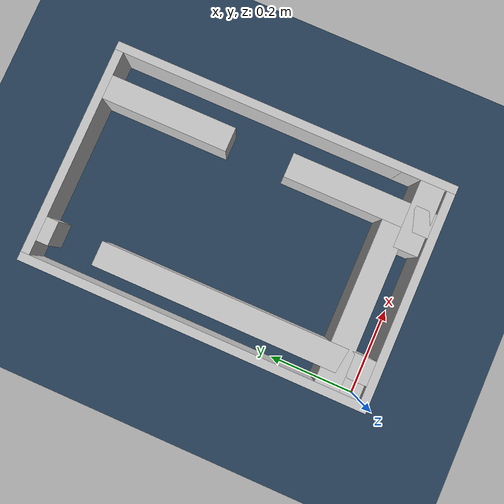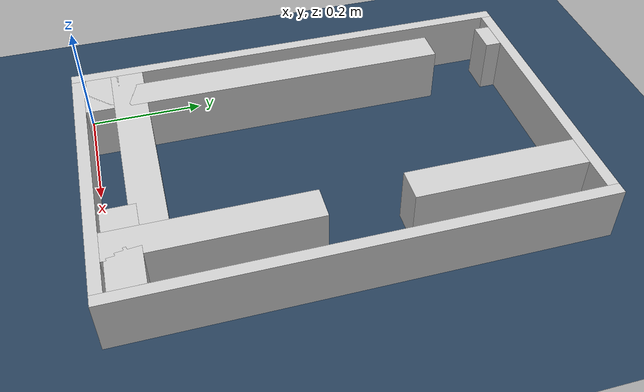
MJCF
<?xml version="1.0" ?>
<mujoco model="generated_real_template">
  <compiler angle="degree"/>
  <option timestep="0.002" integrator="implicitfast" iterations="100" cone="elliptic"/>
  <default>
    <geom density="1"/>
  </default>
  <asset>
    <texture builtin="gradient" height="3072" rgb1="0.3 0.5 0.7" rgb2="0 0 0" type="skybox" width="512"/>
    <texture builtin="checker" height="300" mark="edge" markrgb="0.8 0.8 0.8" name="groundplane" rgb1="0.2 0.3 0.4" rgb2="0.1 0.2 0.3" type="2d" width="300"/>
    <material name="groundplane" reflectance="0.2" texrepeat="5 5" texture="groundplane" texuniform="true"/>
  </asset>
  <worldbody>
    <light dir="0 0 -1" directional="true" pos="0 0 1.5"/>
    <geom name="floor" type="plane" condim="4" friction="0.5 0.005 0.001" material="groundplane" size="0 0 0.05"/>
    <body name="walls">
      <geom name="wall_boundary_left" type="box" condim="4" friction="1.0 0.005 0.0001" rgba="0.8 0.8 0.8 1" pos="-0.010000 0.387500 0.050000" euler="0 0 0.000000" size="0.010000 0.407500 0.050000"/>
      <geom name="wall_boundary_right" type="box" condim="4" friction="1.0 0.005 0.0001" rgba="0.8 0.8 0.8 1" pos="0.500000 0.387500 0.050000" euler="0 0 0.000000" size="0.010000 0.407500 0.050000"/>
      <geom name="wall_boundary_bottom" type="box" condim="4" friction="1.0 0.005 0.0001" rgba="0.8 0.8 0.8 1" pos="0.245000 -0.010000 0.050000" euler="0 0 0.000000" size="0.245000 0.010000 0.050000"/>
      <geom name="wall_boundary_top" type="box" condim="4" friction="1.0 0.005 0.0001" rgba="0.8 0.8 0.8 1" pos="0.245000 0.785000 0.050000" euler="0 0 0.000000" size="0.245000 0.010000 0.050000"/>
      <geom name="wall_inner_1_1" type="box" condim="4" friction="1.0 0.005 0.0001" rgba="0.8 0.8 0.8 1" pos="0.405604 0.169404 0.050000" euler="0 0 90.000000" size="0.169404 0.028500 0.050000"/>
      <geom name="wall_inner_1_2" type="box" condim="4" friction="1.0 0.005 0.0001" rgba="0.8 0.8 0.8 1" pos="0.405604 0.626267 0.050000" euler="0 0 90.000000" size="0.148733 0.028500 0.050000"/>
      <geom name="wall_inner_2_1" type="box" condim="4" friction="1.0 0.005 0.0001" rgba="0.8 0.8 0.8 1" pos="0.040100 0.032840 0.050000" euler="0 0 0.000000" size="0.040100 0.028500 0.050000"/>
      <geom name="wall_inner_2_2" type="box" condim="4" friction="1.0 0.005 0.0001" rgba="0.8 0.8 0.8 1" pos="0.410542 0.032840 0.050000" euler="0 0 0.000000" size="0.079458 0.028500 0.050000"/>
      <geom name="wall_inner_3_1" type="box" condim="4" friction="1.0 0.005 0.0001" rgba="0.8 0.8 0.8 1" pos="0.062308 0.321251 0.050000" euler="0 0 90.000000" size="0.321251 0.028500 0.050000"/>
      <geom name="wall_inner_3_2" type="box" condim="4" friction="1.0 0.005 0.0001" rgba="0.8 0.8 0.8 1" pos="0.062308 0.760818 0.050000" euler="0 0 90.000000" size="0.014182 0.028500 0.050000"/>
      <geom name="wall_inner_4_1" type="box" condim="4" friction="1.0 0.005 0.0001" rgba="0.8 0.8 0.8 1" pos="0.189372 0.077214 0.050000" euler="0 0 0.000000" size="0.189372 0.028500 0.050000"/>
      <geom name="wall_inner_4_2" type="box" condim="4" friction="1.0 0.005 0.0001" rgba="0.8 0.8 0.8 1" pos="0.489885 0.077214 0.050000" euler="0 0 0.000000" size="0.000115 0.028500 0.050000"/>
    </body>
  </worldbody>
</mujoco>
